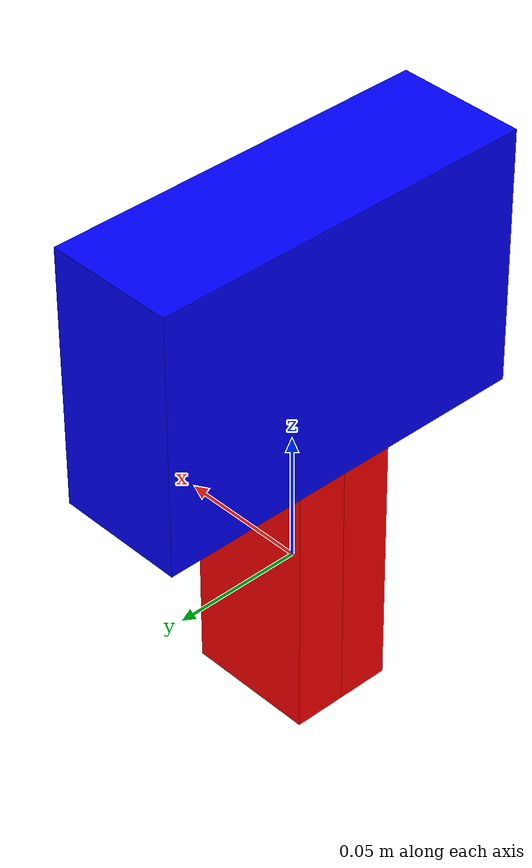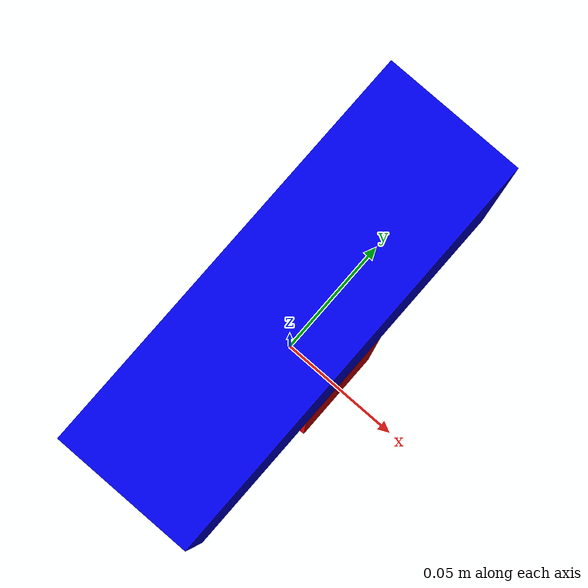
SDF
<?xml version="1.0"?>
<sdf version="1.7">
  <model name="gripper">
    <link name="gripper_body">
      <pose>0 0 0 0 0 0</pose>
      <inertial>
        <mass>1</mass>
        <inertia>
          <ixx>0.1</ixx>
          <ixy>0</ixy>
          <ixz>0</ixz>
          <iyy>0.1</iyy>
          <iyz>0</iyz>
          <izz>0.1</izz>
        </inertia>
      </inertial>
      <visual name="visual">
        <pose>0 0 0.1 0 0 0</pose>
        <geometry>
          <box>
            <size>0.05 0.15 0.1</size>
          </box>
        </geometry>
        <material>
          <diffuse>0 0 1 1</diffuse>
        </material>
      </visual>
    </link>

    <joint name="y_slider_left" type="prismatic">
      <parent>gripper_body</parent>
      <child>left_finger</child>
      <axis>
        <xyz>0 1 0</xyz>
      </axis>
    </joint>

    <joint name="y_slider_right" type="prismatic">
      <parent>gripper_body</parent>
      <child>right_finger</child>
      <axis>
        <xyz>0 1 0</xyz>
      </axis>
    </joint>

    <link name="ghost_body_y">
      <inertial>
        <mass>1.0e-6</mass>
        <inertia>
          <ixx>1.0e-6</ixx>
          <ixy>0</ixy>
          <ixz>0</ixz>
          <iyy>1.0e-6</iyy>
          <iyz>0</iyz>
          <izz>1.0e-6</izz>
        </inertia>
      </inertial>
    </link>

    <link name="ghost_body_z">
      <inertial>
        <mass>1.0e-6</mass>
        <inertia>
          <ixx>1.0e-6</ixx>
          <ixy>0</ixy>
          <ixz>0</ixz>
          <iyy>1.0e-6</iyy>
          <iyz>0</iyz>
          <izz>1.0e-6</izz>
        </inertia>
      </inertial>
    </link>

    <joint name="y_slider" type="prismatic">
      <parent>world</parent>
      <child>ghost_body_y</child>
      <axis>
        <xyz>0 1 0</xyz>
        <!-- Drake attaches an actuator to all joints with a non-zero effort
             limit. We do not want an actuator for this joint. -->
        <limit>
          <effort>0</effort>
        </limit>
      </axis>
    </joint>

    <joint name="z_slider" type="prismatic">
      <parent>ghost_body_y</parent>
      <child>ghost_body_z</child>
      <axis>
        <xyz>0 0 1</xyz>
        <!-- Drake attaches an actuator to all joints with a non-zero effort
             limit. We do not want an actuator for this joint and therefore we
             set a zero effort limit. -->
        <limit>
          <effort>0</effort>
        </limit>
      </axis>
    </joint>

    <joint name="rotation" type="revolute">
      <parent>ghost_body_z</parent>
      <child>gripper_body</child>
      <axis>
        <xyz>1 0 0</xyz>
        <!-- Drake attaches an actuator to all joints with a non-zero effort
             limit. We do not want an actuator for this joint and therefore we
             set a zero effort limit. -->
        <limit>
          <effort>0</effort>
        </limit>
      </axis>
    </joint>

    <!-- The model for a solid box of uniform density. -->
    <link name="left_finger">
      <pose>0 -0.01 0 0 0 0</pose>
      <inertial>
        <mass>1.0</mass>
        <inertia>
          <ixx>0.166666666666667</ixx>
          <ixy>0</ixy>
          <ixz>0</ixz>
          <iyy>0.166666666666667</iyy>
          <iyz>0</iyz>
          <izz>0.166666666666667</izz>
        </inertia>
      </inertial>
      <visual name="visual">
        <geometry>
          <box>
            <size>0.05 0.02 0.1</size>
          </box>
        </geometry>
        <material>
          <diffuse>1 0 0 1</diffuse>
        </material>
      </visual>
      <collision name="collision_left">
        <geometry>
          <box>
            <size>0.05 0.02 0.1</size>
          </box>
        </geometry>
        <surface>
          <friction>
            <ode>
              <mu>1.0</mu>
              <mu2>1.0</mu2>
            </ode>
          </friction>
        </surface>
      </collision>
    </link>

      <!-- The model for a solid box of uniform density. -->
    <link name="right_finger">
      <pose>0 0.01 0 0 0 0</pose>
      <inertial>
        <mass>1.0</mass>
        <inertia>
          <ixx>0.166666666666667</ixx>
          <ixy>0</ixy>
          <ixz>0</ixz>
          <iyy>0.166666666666667</iyy>
          <iyz>0</iyz>
          <izz>0.166666666666667</izz>
        </inertia>
      </inertial>
      <visual name="visual">
        <geometry>
          <box>
            <size>0.05 0.02 0.1</size>
          </box>
        </geometry>
        <material>
          <diffuse>1 0 0 1</diffuse>
        </material>
      </visual>
      <collision name="collision_right">
        <geometry>
          <box>
            <size>0.05 0.02 0.1</size>
          </box>
        </geometry>
        <surface>
          <friction>
            <ode>
              <mu>1.0</mu>
              <mu2>1.0</mu2>
            </ode>
          </friction>
        </surface>
      </collision>
    </link>
  </model>
</sdf>
